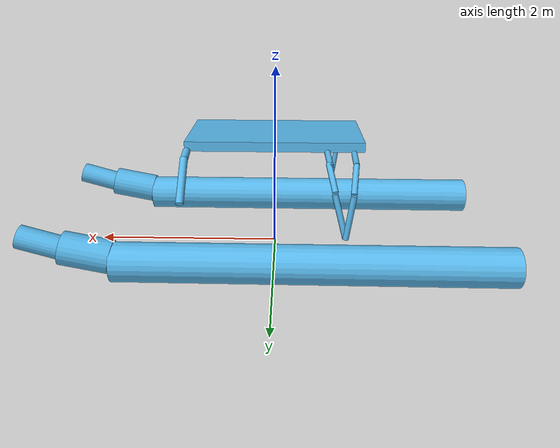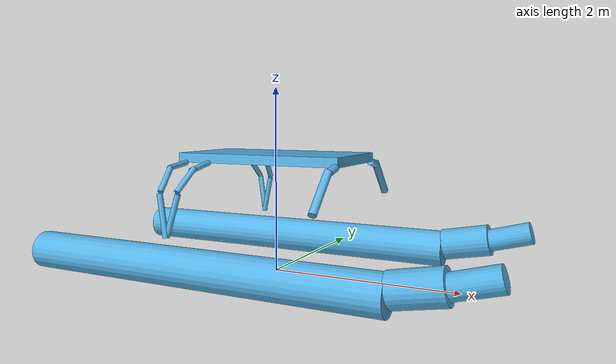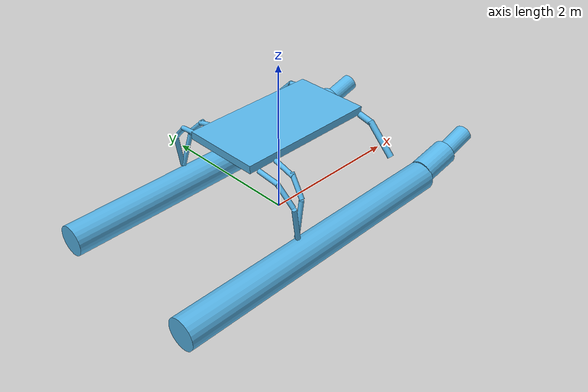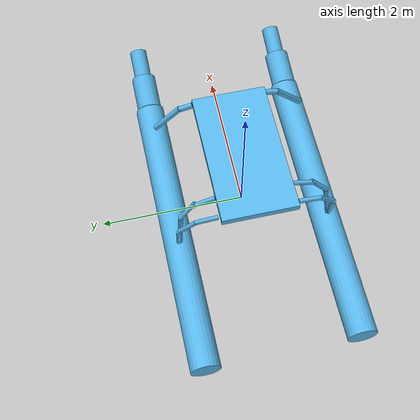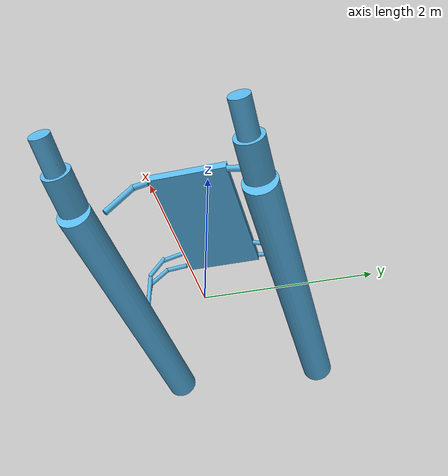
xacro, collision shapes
<?xml version="1.0"?>
<robot xmlns:xacro="http://ros.org/wiki/xacro" name="wam-v">
  <xacro:arg name="namespace" default="wamv"/>
  <xacro:property name="namespace" value="$(arg namespace)" scope="global" />
  <!-- Macro for creating the main collisions as simple shapes. -->
  <xacro:macro name="main_collisions" params="prefix reflect:=1">
    <!-- Main float -->
    <collision name="${prefix}_float">
      <origin xyz="-0.4 ${1.03*reflect} 0.2" rpy="${0*reflect} 1.57 0" />
      <geometry>
        <cylinder length="4" radius="0.2" />
      </geometry>
    </collision>

    <collision name="${prefix}_mid_float">
      <origin xyz="1.85 ${1.03*reflect} 0.3" rpy="${0*reflect} 1.38 0" />
      <geometry>
        <cylinder length="0.5" radius="0.17" />
      </geometry>
    </collision>
    <collision name="${prefix}_front_float">
      <origin xyz="2.3 ${1.03*reflect} 0.4" rpy="${0*reflect} 1.3 0" />
      <geometry>
        <cylinder length="0.45" radius="0.12" />
      </geometry>
    </collision>

    <!-- Front beam -->
    <collision name="front_${prefix}_beam_lower">
      <origin xyz="0.9 ${0.85*reflect} 1" rpy="${0.78*reflect} 0 0" />
      <geometry>
        <cylinder length="0.5" radius="0.04" />
      </geometry>
    </collision>

    <collision name="front_${prefix}_beam_upper">
      <origin xyz="0.9 ${0.6*reflect} 1.18" rpy="${1.35*reflect} 0 0" />
      <geometry>
        <cylinder length="0.2" radius="0.04" />
      </geometry>
    </collision>

    <!-- Mid beam -->
    <collision name="mid_${prefix}_beam_lower">
      <origin xyz="-0.65 ${0.99*reflect} 0.7" rpy="${0.1*reflect} 0.25 0" />
      <geometry>
        <cylinder length="0.45" radius="0.03" />
      </geometry>
    </collision>

    <collision name="mid_${prefix}_beam_medium">
      <origin xyz="-0.57 ${0.87*reflect} 1.05" rpy="${0.75*reflect} 0.25 0" />
      <geometry>
        <cylinder length="0.32" radius="0.03" />
      </geometry>
    </collision>

    <collision name="mid_${prefix}_beam_upper">
      <origin xyz="-0.55 ${0.65*reflect} 1.17" rpy="${1.35*reflect} 0.25 0" />
      <geometry>
        <cylinder length="0.3" radius="0.03" />
      </geometry>
    </collision>

    <!-- Rear beam -->
    <collision name="rear_${prefix}_beam_lower">
      <origin xyz="-0.74 ${1.03*reflect} 0.7" rpy="${0*reflect} -0.15 0" />
      <geometry>
        <cylinder length="0.45" radius="0.03" />
      </geometry>
    </collision>

    <collision name="rear_${prefix}_beam_medium">
      <origin xyz="-0.79 ${0.91*reflect} 1.05" rpy="${0.75*reflect} -0.15 0" />
      <geometry>
        <cylinder length="0.32" radius="0.03" />
      </geometry>
    </collision>

    <collision name="rear_${prefix}_beam_upper">
      <origin xyz="-0.81 ${0.67*reflect} 1.18" rpy="${1.45*reflect} -0.15 0" />
      <geometry>
        <cylinder length="0.3" radius="0.03" />
      </geometry>
    </collision>

  </xacro:macro>

  <link name="${namespace}/base_link">
  </link>

  <joint name="${namespace}/dummy_joint" type = "fixed">
    <parent link="${namespace}/base_link"/>
    <child link="${namespace}/dummy_link"/>
  </joint>

  <!-- Basic model of the 16' WAM-V USV -->
  <link name="${namespace}/dummy_link">
    <visual>
      <origin xyz="0 0.085 -0.45" rpy="0 0 0" />
      <geometry>
        <mesh filename="package://wamv_description/models/WAM-V-Base/mesh/WAM-V-Base.dae"/>
      </geometry>
    </visual>

    <!-- Left base collisions -->
    <xacro:main_collisions prefix="left" reflect="1" />

    <!-- Right side collisions -->
    <xacro:main_collisions prefix="right" reflect="-1" />

     <!-- Top base -->
    <collision name="top_base">
      <origin xyz="0 -0 1.25" rpy="0 0 0" />
      <geometry>
        <box size="1.85 1 0.1" />
      </geometry>
    </collision>

    <inertial>
      <!-- From WAM-V spec sheet -->
      <mass value="16.32"/>
      <inertia ixx="2.74" ixy="0.0" ixz="0.0" iyy="4.16" iyz="0.0" izz="4.7"/>
    </inertial>
  </link>

</robot>
